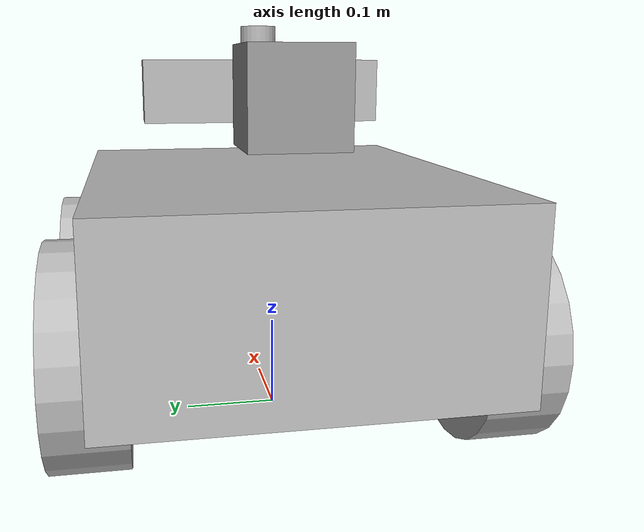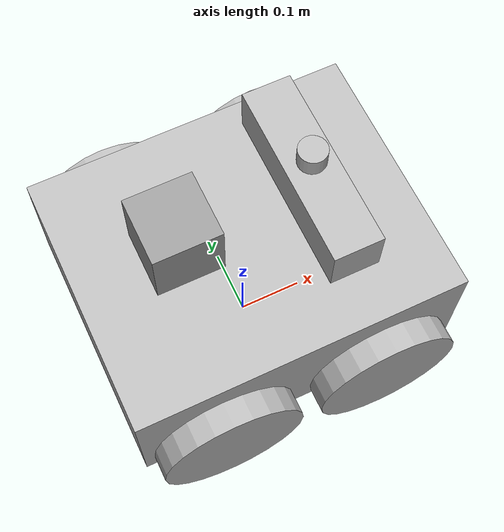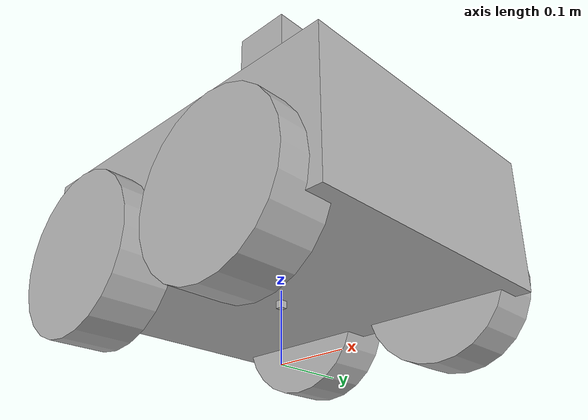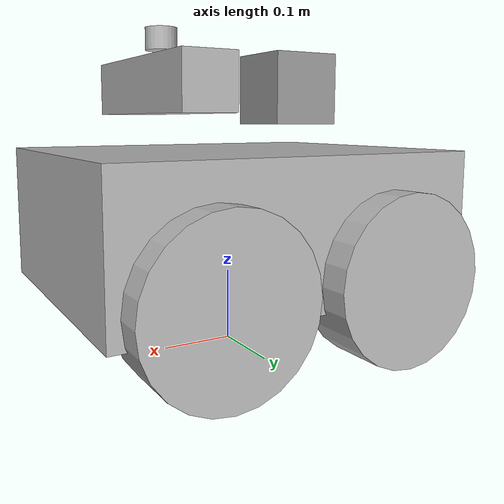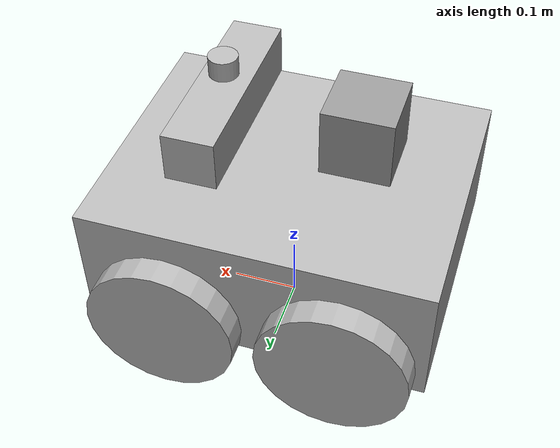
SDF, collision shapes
<?xml version="1.0" ?>
<sdf version="1.5">
  <model name="Pioneer3AT">
    <pose>0 0 0.180 0 0 0</pose>
    <static>false</static>
 <link name="Pioneer3AT/base_link">
    <pose>0 0 -0.10 0 0 0</pose>
     <inertial>
        <mass>0.001</mass>
        <inertia>
          <ixx>0.3338</ixx>
          <ixy>0.0</ixy>
          <ixz>0.0</ixz>
          <iyy>0.4783</iyy>
          <iyz>0.0</iyz>
          <izz>0.3338</izz>
        </inertia>
      </inertial>
      <collision name="collision">
        <geometry>
          <box>
            <size>0.01 0.0100 0.01</size>
          </box>
        </geometry>
      </collision>
</link>
<joint name="base_top_joint" type="fixed">
         <parent> Pioneer3AT/base_link</parent>
         <child>chassis</child>
</joint>
<link name="camera_rgb_frame">
      <pose>0 0 -0.03 0 0 0</pose>
      <collision name="collision">
        <geometry>
          <box>
            <size>0.001 0.001 0.001</size>
          </box>
        </geometry>
      </collision>
</link>
<joint name="camera_rgb_to_base" type="fixed">
        <parent>chassis</parent>
        <child>camera_rgb_frame</child>
        <axis>
          <xyz>0 0 1</xyz>
          <limit>
            <upper>0</upper>
            <lower>0</lower>
          </limit>
        </axis>
</joint>

    <link name="chassis">
      <inertial>
        <mass>54.0</mass>
        <inertia>
          <ixx>0.3338</ixx>
          <ixy>0.0</ixy>
          <ixz>0.0</ixz>
          <iyy>0.4783</iyy>
          <iyz>0.0</iyz>
          <izz>0.3338</izz>
        </inertia>
      </inertial>
      <collision name="collision">
        <geometry>
          <box>
            <size>0.501 0.400 0.19</size>
          </box>
        </geometry>
      </collision>
      <visual name="visual">
        <geometry>
          <mesh>
            <uri>model://pioneer3at/meshes/chassis.dae</uri>
          </mesh>
        </geometry>
      </visual>
    </link>
    <link name="right_front_wheel">
      <pose>0.125 -0.201 -0.06 1.5707 0 0</pose>
      <collision name="collision">
        <geometry>
          <cylinder>
            <radius>0.110</radius>
            <length>0.075</length>
          </cylinder>
        </geometry>
        <surface>
          <friction>
            <ode>
              <mu>1</mu>
              <mu2>1</mu2>
              <slip1>0</slip1>
              <slip2>0</slip2>
            </ode>
          </friction>
        </surface>
      </collision>
      <visual name="visual">
        <geometry>
          <mesh>
            <uri>model://pioneer3at/meshes/wheel.dae</uri>
          </mesh>
        </geometry>
      </visual>
    </link>
    <link name="left_front_wheel">
      <pose>0.125 0.201 -0.06 1.5707 0 0</pose>
      <collision name="collision">
        <geometry>
          <cylinder>
            <radius>0.110</radius>
            <length>0.075</length>
          </cylinder>
        </geometry>
        <surface>
          <friction>
            <ode>
              <mu>1</mu>
              <mu2>1</mu2>
              <slip1>0</slip1>
              <slip2>0</slip2>
            </ode>
          </friction>
        </surface>
      </collision>
      <visual name="visual">
        <geometry>
          <mesh>
            <uri>model://pioneer3at/meshes/wheel.dae</uri>
          </mesh>
        </geometry>
      </visual>
    </link>
    <link name="right_rear_wheel">
      <pose>-0.125 -0.201 -0.06 1.5707 0 0</pose>
      <collision name="collision">
        <geometry>
          <cylinder>
            <radius>0.110</radius>
            <length>0.075</length>
          </cylinder>
        </geometry>
        <surface>
          <friction>
            <ode>
              <mu>1</mu>
              <mu2>1</mu2>
              <slip1>0</slip1>
              <slip2>0</slip2>
            </ode>
          </friction>
        </surface>
      </collision>
      <visual name="visual">
        <geometry>
          <mesh>
            <uri>model://pioneer3at/meshes/wheel.dae</uri>
          </mesh>
        </geometry>
      </visual>
    </link>
    <link name="left_rear_wheel">
      <pose>-0.125 0.201 -0.06 1.5707 0 0</pose>
      <collision name="collision">
        <geometry>
          <cylinder>
            <radius>0.110</radius>
            <length>0.075</length>
          </cylinder>
        </geometry>
        <surface>
          <friction>
            <ode>
              <mu>1</mu>
              <mu2>1</mu2>
              <slip1>0</slip1>
              <slip2>0</slip2>
            </ode>
          </friction>
        </surface>
      </collision>
      <visual name="visual">
        <geometry>
          <mesh>
            <uri>model://pioneer3at/meshes/wheel.dae</uri>
          </mesh>
        </geometry>
      </visual>
    </link>
    <joint type="revolute" name="right_front">
      <pose>0 0 0 0 0 0</pose>
      <child>right_front_wheel</child>
      <parent>chassis</parent>
      <axis>
        <xyz>0 1 0</xyz>
        <use_parent_model_frame>true</use_parent_model_frame>
      </axis>
    </joint>
    <joint type="revolute" name="right_rear">
      <pose>0 0 0 0 0 0</pose>
      <child>right_rear_wheel</child>
      <parent>chassis</parent>
      <axis>
        <xyz>0 1 0</xyz>
        <use_parent_model_frame>true</use_parent_model_frame>
      </axis>
    </joint>
    <joint type="revolute" name="left_front">
      <pose>0 0 0 0 0 0</pose>
      <child>left_front_wheel</child>
      <parent>chassis</parent>
      <axis>
        <xyz>0 1 0</xyz>
        <use_parent_model_frame>true</use_parent_model_frame>
      </axis>
    </joint>
    <joint type="revolute" name="left_rear">
      <pose>0 0 0 0 0 0</pose>
      <child>left_rear_wheel</child>
      <parent>chassis</parent>
      <axis>
        <xyz>0 1 0</xyz>
        <use_parent_model_frame>true</use_parent_model_frame>
      </axis>
    </joint>
  <plugin name="skid_steer_drive_controller" filename="libgazebo_ros_skid_steer_drive.so">
    <updateRate>100.0</updateRate>
    <robotNamespace>/</robotNamespace>
    <leftFrontJoint>left_front</leftFrontJoint>
    <rightFrontJoint>right_front</rightFrontJoint>
    <leftRearJoint>left_rear</leftRearJoint>
    <rightRearJoint>right_rear</rightRearJoint>
    <wheelSeparation>0.4</wheelSeparation>
    <wheelDiameter>0.215</wheelDiameter>
    <robotBaseFrame>Pioneer3AT/base_link</robotBaseFrame>
    <torque>20</torque>
    <commandTopic>cmd_vel</commandTopic>
    <broadcastTF>false</broadcastTF>
  </plugin>
    <link name='link_3'>
      <pose frame=''>-0.1 0 0.18 0 1e-06 0.000218</pose>
      <inertial>
        <mass>0.01</mass>
        <inertia>
          <ixx>0.166667</ixx>
          <ixy>0</ixy>
          <ixz>0</ixz>
          <iyy>0.166667</iyy>
          <iyz>0</iyz>
          <izz>0.166667</izz>
        </inertia>
        <pose frame=''>0 0 0 0 -0 0</pose>
      </inertial>
      <gravity>1</gravity>
      <visual name='visual'>
        <pose frame=''>0 0 0 0 -0 0</pose>
        <geometry>
          <box>
            <size>0.1 0.1 0.1</size>
          </box>
        </geometry>
        <material>
          <lighting>1</lighting>
          <script>
            <uri>file://media/materials/scripts/gazebo.material</uri>
            <name>Gazebo/Grey</name>
          </script>
        </material>
      </visual>
      <collision name='collision'>
        <pose frame=''>0 0 0 0 -0 0</pose>
        <geometry>
          <box>
            <size>0.1 0.1 0.1</size>
          </box>
        </geometry>
      </collision>
    </link>
    <joint name='chassis_JOINT_0' type='fixed'>
      <parent>chassis</parent>
      <child>link_3</child>
      <pose frame=''>0 0 0 0 -0 0</pose>
      <physics>
        <ode>
          <limit>
            <cfm>0</cfm>
            <erp>0.2</erp>
          </limit>
          <suspension>
            <cfm>0</cfm>
            <erp>0.2</erp>
          </suspension>
        </ode>
      </physics>
    </joint>
      <include>
        <uri>model://kinect_ros</uri>
        <pose>0.1 0 0.18 0 0 0</pose>
      </include>
      <joint name="kinect_joint" type="fixed">
        <child>kinect::link</child>
        <parent>chassis</parent>
        <axis>
          <xyz>0 0 1</xyz>
          <limit>
            <upper>0</upper>
            <lower>0</lower>
          </limit>
        </axis>
      </joint>
      <include>
        <uri>model://hokuyo</uri>
        <pose>0.1 0 0.22 0 0 0</pose>
      </include>
      <joint name="hokuyo_joint" type="revolute">
        <child>hokuyo::link</child>
        <parent>chassis</parent>
        <axis>
          <xyz>0 0 1</xyz>
          <limit>
            <upper>0</upper>
            <lower>0</lower>
          </limit>
        </axis>
      </joint>
  </model>
</sdf>

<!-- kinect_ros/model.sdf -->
<sdf version="1.5">
  <model name="kinect">
    <pose>0 0 0.036 0 0 0</pose>
    <link name="link">
      <inertial>
        <mass>0.1</mass>
      </inertial>
      <collision name="collision">
        <geometry>
          <box>
            <size>0.073000 0.276000 0.072000</size>
          </box>
        </geometry>
      </collision>
      <visual name="visual">
        <geometry>
          <mesh>
            <uri>model://kinect/meshes/kinect.dae</uri>
          </mesh>
        </geometry>
      </visual>
      <sensor name="camera" type="depth">
        <update_rate>20</update_rate>
        <camera>
          <horizontal_fov>1.047198</horizontal_fov>
          <image>
            <width>640</width>
            <height>480</height>
            <format>R8G8B8</format>
          </image>
          <clip>
            <near>0.05</near>
            <far>3</far>
          </clip>
        </camera>
          <plugin name='kinect_camera_controller' filename='libgazebo_ros_openni_kinect.so'>
            <cameraName>camera</cameraName>
            <alwaysOn>true</alwaysOn>
            <updateRate>10</updateRate>
            <imageTopicName>rgb/image_raw</imageTopicName>
            <depthImageTopicName>depth/image_raw</depthImageTopicName>
            <pointCloudTopicName>depth/points</pointCloudTopicName>
            <cameraInfoTopicName>rgb/camera_info</cameraInfoTopicName>
            <depthImageCameraInfoTopicName>depth/camera_info</depthImageCameraInfoTopicName>
            <frameName>camera_depth_optical_frame</frameName>
            <baseline>0.1</baseline>
            <distortion_k1>0.0</distortion_k1>
            <distortion_k2>0.0</distortion_k2>
            <distortion_k3>0.0</distortion_k3>
            <distortion_t1>0.0</distortion_t1>
            <distortion_t2>0.0</distortion_t2>
            <pointCloudCutoff>0.4</pointCloudCutoff>
          </plugin>
      </sensor>
    </link>
  </model>
</sdf>

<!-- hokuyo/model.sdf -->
<sdf version="1.4">
  <model name="hokuyo">
    <link name="link">
      <inertial>
        <pose>0.01 0.025 0.025 0 -0 0</pose>
        <mass>0.1</mass>
        <inertia>
          <ixx>4.15e-6</ixx>
          <ixy>0</ixy>
          <ixz>0</ixz>
          <iyy>2.407e-6</iyy>
          <iyz>0</iyz>
          <izz>2.407e-6</izz>
        </inertia>
      </inertial>

      <visual name="visual">
        <geometry>
          <mesh>
            <uri>model://hokuyo/meshes/hokuyo.dae</uri>
          </mesh>
        </geometry>
      </visual>
      <collision name="collision-base">
        <pose>0 0 -0.0145 0 0 0</pose>
        <geometry>
          <box>
            <size>0.01 0.01 0.01</size>
          </box>
        </geometry>
      </collision>
      <collision name="collision-top">
        <pose>0 0 0.0205 0 0 0</pose>
        <geometry>
          <cylinder>
            <radius>0.021</radius>
            <length>0.029</length>
          </cylinder>
        </geometry>
      </collision>
      <sensor name="laser" type="ray">
        <pose>0.01 0 0.0175 0 -0 0</pose>
        <ray>
          <scan>
            <horizontal>
              <samples>640</samples>
              <resolution>1</resolution>
              <min_angle>-2.26889</min_angle>
              <max_angle>2.268899</max_angle>
            </horizontal>
          </scan>
          <range>
            <min>0.08</min>
            <max>100</max>
            <resolution>0.01</resolution>
          </range>
        </ray>
        <plugin name="laser" filename="libRayPlugin.so" />
        <always_on>1</always_on>
        <update_rate>30</update_rate>
        <visualize>false</visualize>
      </sensor>
    </link>
  </model>
</sdf>
